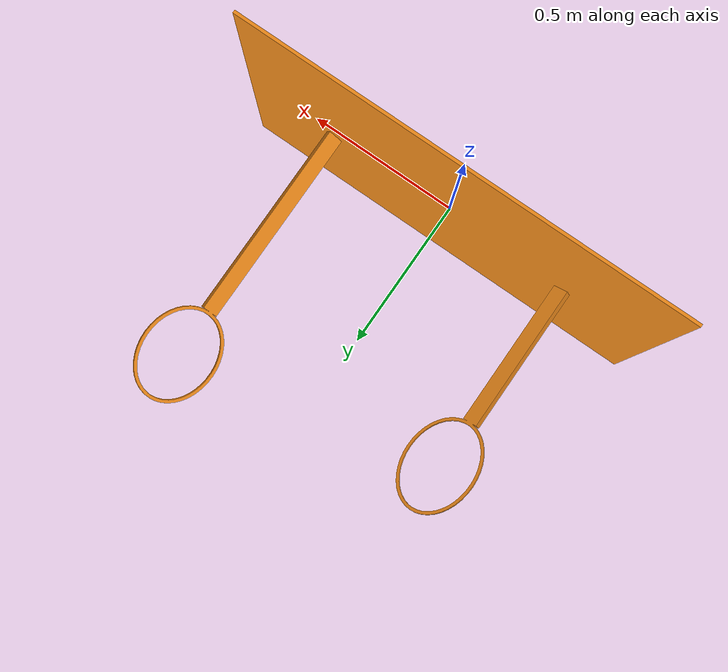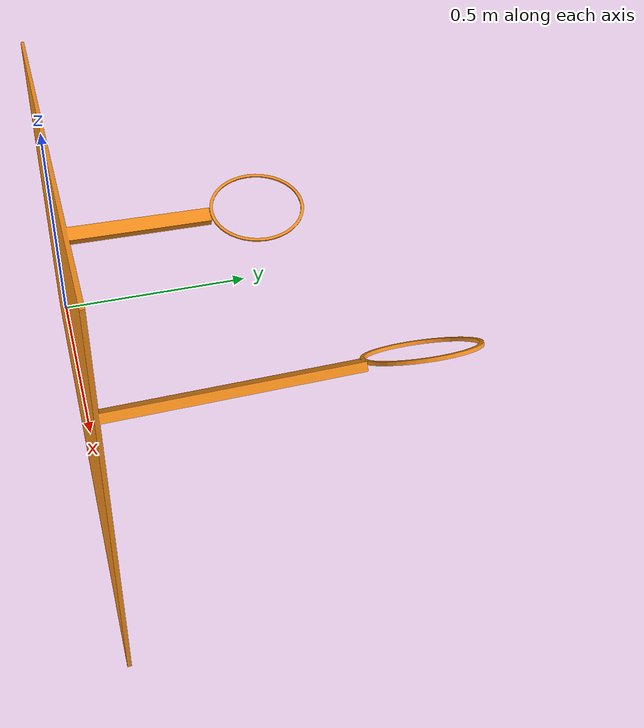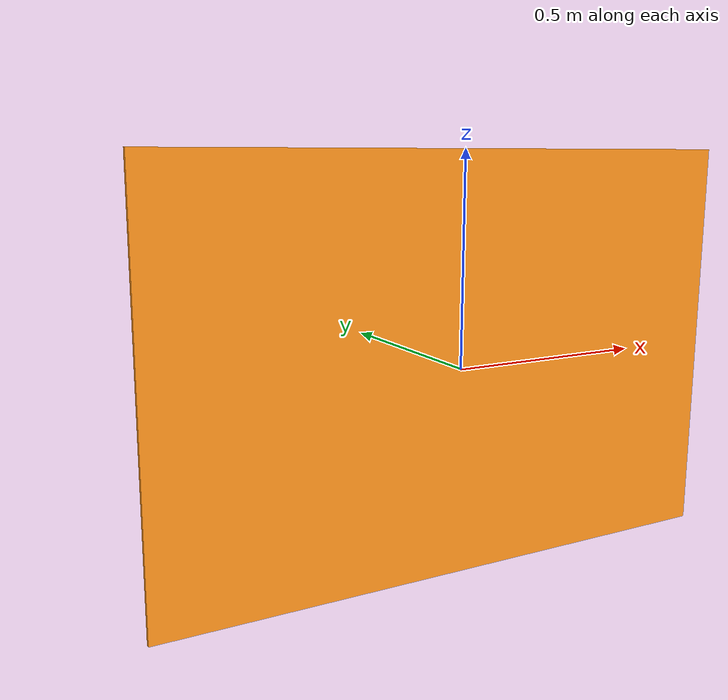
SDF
<?xml version="1.0" ?>
<sdf version="1.5">
  <model name="arena">
    <pose>0 0 0 0 0 0</pose>
    <static>false</static>
    <link name="link">
      <inertial>
        <mass>16.601</mass>
      </inertial>
      <collision name="collision">
        <geometry>
          <mesh>
            <uri>model://arena/meshes/arena.STL</uri>
            <scale>1 1 1</scale>
          </mesh>
        </geometry>
      </collision>
      <visual name="visual">
        <geometry>
          <mesh>
            <uri>model://arena/meshes/arena.STL</uri>
            <scale>1 1 1</scale>
          </mesh>
        </geometry>
        <material>
          <script>
            <uri>file://media/materials/scripts/gazebo.material</uri>
            <name>Gazebo/Orange</name>
          </script>
        </material>
      </visual>
    </link>
  </model>
</sdf>
